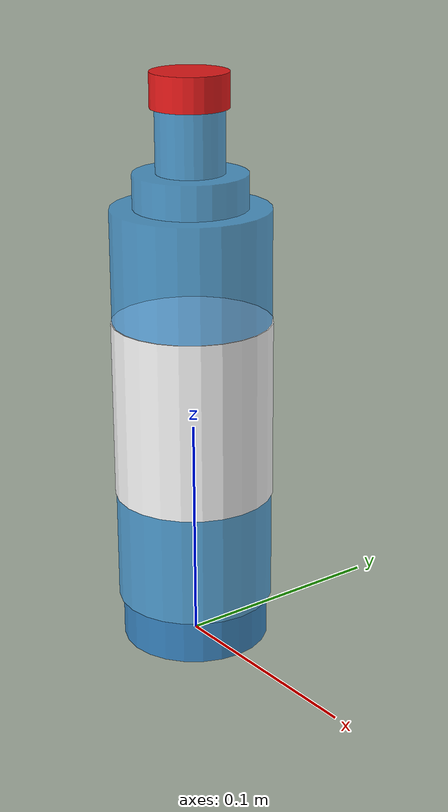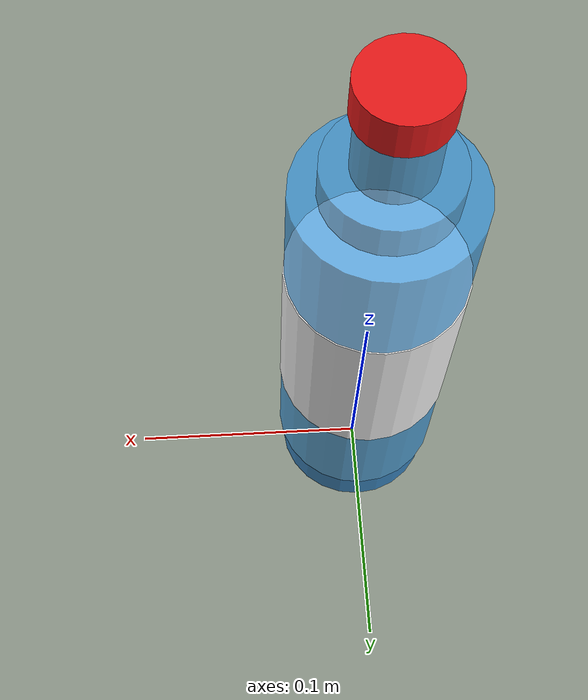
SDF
<?xml version="1.0"?>
<sdf version="1.8">
  <model name="plastic_bottle">
    <static>false</static>
    <link name="link">
      <inertial>
        <mass>0.05</mass>
        <inertia>
          <ixx>0.000025</ixx>
          <ixy>0</ixy>
          <ixz>0</ixz>
          <iyy>0.000025</iyy>
          <iyz>0</iyz>
          <izz>0.000010</izz>
        </inertia>
      </inertial>

      <!-- Main bottle body -->
      <collision name="body_collision">
        <pose>0 0 0.11 0 0 0</pose>
        <geometry>
          <cylinder>
            <radius>0.035</radius>
            <length>0.18</length>
          </cylinder>
        </geometry>
        <surface>
          <friction>
            <ode>
              <mu>0.6</mu>
              <mu2>0.6</mu2>
            </ode>
          </friction>
        </surface>
      </collision>

      <!-- Bottle neck collision -->
      <collision name="neck_collision">
        <pose>0 0 0.215 0 0 0</pose>
        <geometry>
          <cylinder>
            <radius>0.015</radius>
            <length>0.05</length>
          </cylinder>
        </geometry>
      </collision>

      <!-- Main bottle body visual -->
      <visual name="body_visual">
        <pose>0 0 0.11 0 0 0</pose>
        <geometry>
          <cylinder>
            <radius>0.035</radius>
            <length>0.18</length>
          </cylinder>
        </geometry>
        <material>
          <ambient>0.2 0.6 0.9 0.7</ambient>
          <diffuse>0.2 0.6 0.9 0.7</diffuse>
          <specular>0.8 0.8 0.8 1.0</specular>
        </material>
      </visual>

      <!-- Bottle shoulder (taper) -->
      <visual name="shoulder_visual">
        <pose>0 0 0.205 0 0 0</pose>
        <geometry>
          <cylinder>
            <radius>0.025</radius>
            <length>0.02</length>
          </cylinder>
        </geometry>
        <material>
          <ambient>0.2 0.6 0.9 0.7</ambient>
          <diffuse>0.2 0.6 0.9 0.7</diffuse>
          <specular>0.8 0.8 0.8 1.0</specular>
        </material>
      </visual>

      <!-- Bottle neck visual -->
      <visual name="neck_visual">
        <pose>0 0 0.225 0 0 0</pose>
        <geometry>
          <cylinder>
            <radius>0.015</radius>
            <length>0.04</length>
          </cylinder>
        </geometry>
        <material>
          <ambient>0.2 0.6 0.9 0.7</ambient>
          <diffuse>0.2 0.6 0.9 0.7</diffuse>
          <specular>0.8 0.8 0.8 1.0</specular>
        </material>
      </visual>

      <!-- Bottle cap -->
      <visual name="cap_visual">
        <pose>0 0 0.25 0 0 0</pose>
        <geometry>
          <cylinder>
            <radius>0.017</radius>
            <length>0.015</length>
          </cylinder>
        </geometry>
        <material>
          <ambient>0.9 0.1 0.1 1.0</ambient>
          <diffuse>0.9 0.1 0.1 1.0</diffuse>
          <specular>0.3 0.3 0.3 1.0</specular>
        </material>
      </visual>

      <!-- Label strip -->
      <visual name="label_visual">
        <pose>0 0 0.11 0 0 0</pose>
        <geometry>
          <cylinder>
            <radius>0.0355</radius>
            <length>0.08</length>
          </cylinder>
        </geometry>
        <material>
          <ambient>0.95 0.95 0.95 1.0</ambient>
          <diffuse>0.95 0.95 0.95 1.0</diffuse>
          <specular>0.1 0.1 0.1 1.0</specular>
        </material>
      </visual>

      <!-- Bottom base -->
      <visual name="base_visual">
        <pose>0 0 0.01 0 0 0</pose>
        <geometry>
          <cylinder>
            <radius>0.033</radius>
            <length>0.02</length>
          </cylinder>
        </geometry>
        <material>
          <ambient>0.15 0.5 0.8 0.8</ambient>
          <diffuse>0.15 0.5 0.8 0.8</diffuse>
          <specular>0.5 0.5 0.5 1.0</specular>
        </material>
      </visual>
    </link>
  </model>
</sdf>
